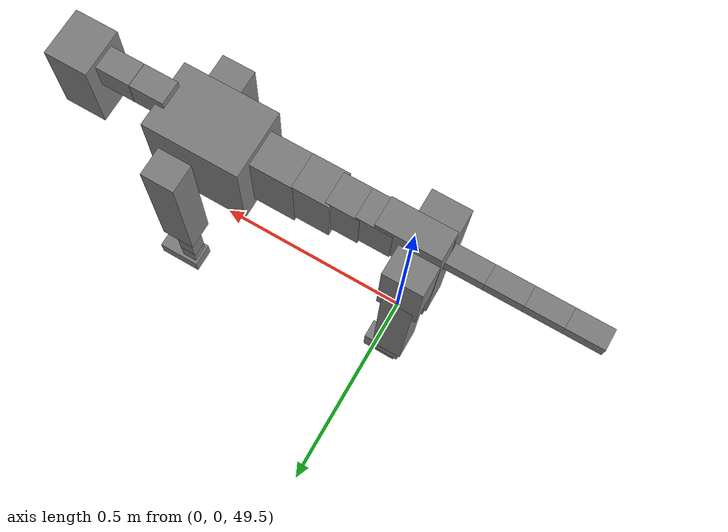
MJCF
<mujoco model="dog">

    <default>
        <joint armature="0.02" stiffness="1" damping="0.2" limited="true"/>
        <geom condim="3" friction="1 0.05 0.05" margin="0.01"/>
        <motor ctrllimited="true" ctrlrange="-1.0 1.0" forcelimited="true" gear="50"/>
    </default>

    <compiler inertiafromgeom="true" angle="radian"/>

    <option timestep="0.016" iterations="50" tolerance="1e-10" solver="Newton" jacobian="dense" cone="pyramidal"/>

    <size nconmax="20000" njmax="60000" nstack="5000000"/>
    <visual>
        <map force="0.1" zfar="30"/>
        <rgba haze="0.15 0.25 0.35 1"/>
        <quality shadowsize="2048"/>
        <global offwidth="800" offheight="800"/>
    </visual>

    <asset>
        <texture type="skybox" builtin="gradient" rgb1="0.3 0.5 0.7" rgb2="0 0 0" width="512" height="512"/>
        <texture name="texplane" type="2d" builtin="checker" rgb1=".2 .3 .4" rgb2=".1 0.15 0.2" width="512" height="512"
                 mark="cross" markrgb=".8 .8 .8"/>
        <texture name="texgeom" type="cube" builtin="flat" mark="cross" width="127" height="1278" rgb1="0.8 0.6 0.4"
                 rgb2="0.8 0.6 0.4" markrgb="1 1 1" random="0.01"/>

        <material name="matplane" reflectance="0.3" texture="texplane" texrepeat="1 1" texuniform="true"/>
        <material name="matgeom" texture="texgeom" texuniform="true" rgba="0.8 0.6 .4 1"/>
    </asset>

    <worldbody>
        <geom name="floor" pos="0 0 0" size="0 0 .25" type="plane" material="matplane" condim="3"/>

        <light directional="false" diffuse=".2 .2 .2" specular="0 0 0" pos="0 0 5" dir="0 0 -1" castshadow="false"/>
        <light mode="targetbodycom" target="torso" directional="false" diffuse=".8 .8 .8" specular="0.3 0.3 0.3"
               pos="0 0 4.0" dir="0 0 -1"/>

        <body name="root" pos="0 0 50">
            <freejoint name="root_1"/>
            <geom type="box" pos="0 0 -0.02" size="0.0774  0.0358  0.063" density="2030"/>

            <body name="spine1" pos="0.054 0 0">
                <joint name="spine1_y" axis="0 1 0" range="0 0.7" limited="true"/>
                <geom type="box" pos="0.02375 0 -0.03" size="0.04375  0.0375  0.05985" density="2030"/>

                <body name="spine2" pos="0.0612 0 0">
                    <joint name="spine2_y" axis="0 1 0" range="-0.15 0.15" limited="true"/>
                    <geom type="box" pos="0.03555  0  -0.04" size="0.04055  0.039  0.06615" density="2030"/>

                    <body name="spine3" pos="0.0730 0 0">
                        <joint name="spine3_y" axis="0 1 0" range="-0.15 0.15" limited="true"/>
                        <geom type="box" pos="0.03555  0  -0.057" size="0.04555  0.0445  0.081" density="2030"/>

                        <body name="spine4" pos="0.0780 0 0">
                            <joint name="spine4_y" axis="0 1 0" range="-0.15 0.15" limited="true"/>
                            <geom type="box" pos="0.05265  0  -0.07" size="0.05265  0.045  0.09135" density="2030"/>

                            <body name="torso" pos="0.1082 0 0">
                                <joint name="torso_y" axis="0 1 0" range="-0.15 0.15" limited="true"/>
                                <geom type="box" pos="0.11925  0  -0.085" size="0.11925  0.085  0.11745"
                                      density="2030"/>

                                <body name="neck1" pos="0.2160  0   0.0180">
                                    <joint name="neck1_y" axis="0 1 0" range="-1.2  -1" limited="true"/>
                                    <geom type="box" pos="0.0423  0  0" size="0.0423  0.03  0.036" density="2325"/>

                                    <body name="neck2" pos="0.0853  0  0">
                                        <joint name="neck2_y" axis="0 1 0" range="0.1  0" limited="true"/>
                                        <geom type="box" pos="0.0423  0  0" size="0.0423  0.03  0.036" density="2325"/>

                                        <body name="head" pos="0.0853  0  0">
                                            <joint name="head_y" axis="0 1 0" range="-0.3  -0.2" limited="true"/>
                                            <geom type="box" pos="0.0531  0  -0.055" size="0.0531  0.06  0.1044"
                                                  density="4030"/>

                                        </body>
                                    </body>
                                </body>

                                <body name="front_shoulder" pos="0.156  0   -0.0480">
                                    <joint name="front_shoulder_y" axis="0 1 0" range="-1 1.5" limited="true"/>
                                    <geom type="box" pos="0 0.13 -0.1468" size="0.0418  0.0357  0.1735" density="1158"/>
                                    <geom type="box" pos="0 -0.13 -0.1468" size="0.0418  0.0357  0.1735"
                                          density="1158"/>

                                    <body name="front_elbow" pos="0  0  -0.2936">
                                        <joint name="front_elbow_y" axis="0 1 0" range="-2 0" limited="true"/>
                                        <geom type="box" pos="0 0.13 -0.0793" size="0.0204  0.0209  0.0793"
                                              density="1081"/>
                                        <geom type="box" pos="0 -0.13 -0.0793" size="0.0204  0.0209  0.0793"
                                              density="1081"/>

                                        <body name="front_wrist" pos="0  0  -0.1585">
                                            <joint name="front_wrist_y" axis="0 1 0" range="-0.2 0" limited="true"/>
                                            <geom type="box" pos="0 0.13 -0.0265" size="0.0190  0.0211  0.0396"
                                                  density="1664"/>
                                            <geom type="box" pos="0 -0.13 -0.0265" size="0.0190  0.0211  0.0396"
                                                  density="1664"/>

                                            <body name="front_finger_end" pos="0  0  -0.0529">
                                                <joint name="front_finger_y" axis="0 1 0" range="-0.4 1"
                                                       limited="true"/>
                                                <geom type="box" pos="0.0295  0.13  -0.0080"
                                                      size="0.0540  0.0295  0.0230" density="1515"/>
                                                <geom type="box" pos="0.0295  -0.13  -0.0080"
                                                      size="0.0540  0.0295  0.0230" density="1515"/>

                                            </body>

                                        </body>
                                    </body>
                                </body>

                            </body>
                        </body>
                    </body>
                </body>
            </body>

            <body name="back_hip" pos="-0.03 0 -0.018">
                <joint name="back_hip_y" axis="0 1 0" range="-1.5 0.3" limited="true"/>
                <geom type="box" pos="0 0.07 -0.0736" size="0.0487  0.0382  0.0964" density="1154"/>
                <geom type="box" pos="0 -0.07 -0.0736" size="0.0487  0.0382  0.0964" density="1154"/>

                <body name="back_knee" pos="0  0  -0.1472">
                    <joint name="back_knee_y" axis="0 1 0" range="0 2.8" limited="true"/>
                    <geom type="box" pos="0 0.07 -0.1791" size="0.0389  0.0384  0.1946" density="1227"/>
                    <geom type="box" pos="0 -0.07 -0.1791" size="0.0389  0.0384  0.1946" density="1227"/>

                    <body name="back_ankle" pos="0  0  -0.3581">
                        <joint name="back_ankle_y" axis="0 1 0" range="-2.2 0" limited="true"/>
                        <geom type="box" pos="0 0.07 -0.0349" size="0.0314  0.0314  0.0462" density="1284"/>
                        <geom type="box" pos="0 -0.07 -0.0349" size="0.0314  0.0314  0.0462" density="1284"/>

                        <body name="back_toe_end" pos="0  0  -0.0699">
                            <joint name="back_toe_y" axis="0 1 0" range="-0.4 1" limited="true"/>
                            <geom type="box" pos="0.0240  0.07  -0.0217" size="0.0440  0.0240  0.0367" density="1515"/>
                            <geom type="box" pos="0.0240  -0.07  -0.0217" size="0.0440  0.0240  0.0367" density="1515"/>

                        </body>
                    </body>
                </body>
            </body>

            <body name="tail1" pos="-0.074 0 -0.006">
                <joint name="tail1_y" axis="0 1 0" range="-0.2 0.2" limited="true"/>
                <geom type="box" pos="-0.0536  0  0" size="0.045  0.025  0.0175" density="1587"/>

                <body name="tail2" pos="-0.09 0 0">
                    <joint name="tail2_y" axis="0 1 0" range="-0.2 0.2" limited="true"/>
                    <geom type="box" pos="-0.0536  0  0" size="0.045  0.025  0.0175" density="1587"/>

                    <body name="tail3" pos="-0.09 0 0">
                        <joint name="tail3_y" axis="0 1 0" range="-0.2 0.2" limited="true"/>
                        <geom type="box" pos="-0.0536  0  0" size="0.045  0.025  0.0175" density="1587"/>

                        <body name="tail4" pos="-0.09 0 0">
                            <joint name="tail4_y" axis="0 1 0" range="-0.2 0.2" limited="true"/>
                            <geom type="box" pos="-0.0536  0  0" size="0.045  0.025  0.0175" density="1587"/>

                        </body>
                    </body>
                </body>
            </body>
        </body>
    </worldbody>

    <actuator>
        <motor joint="spine1_y" forcerange="-150 150     "/>
        <motor joint="spine2_y" forcerange="-150 150     "/>
        <motor joint="spine3_y" forcerange="-150 150     "/>
        <motor joint="spine4_y" forcerange="-150 150     "/>
        <motor joint="torso_y" forcerange="-150 150     "/>
        <motor joint="neck1_y" forcerange="-100 100       "/>
        <motor joint="neck2_y" forcerange="-100 100       "/>
        <motor joint="head_y" forcerange="-150 150       "/>
        <motor joint="front_shoulder_y" forcerange="-189.97 148.14"/>
        <motor joint="front_elbow_y" forcerange="-143.69 108.28"/>
        <motor joint="front_wrist_y" forcerange="-114.58 54.54"/>
        <motor joint="front_finger_y" forcerange="-26.89 90.24"/>
        <motor joint="back_hip_y" forcerange="-362.72 346.50"/>
        <motor joint="back_knee_y" forcerange="-382.81 375.59"/>
        <motor joint="back_angle_y" forcerange="-188.28 214.51"/>
        <motor joint="back_toe_y" forcerange="-41.38 70.47"/>
        <motor joint="tail1_y" forcerange="-50 50     "/>
        <motor joint="tail2_y" forcerange="-50 50     "/>
        <motor joint="tail3_y" forcerange="-50 50     "/>
        <motor joint="tail4_y" forcerange="-50 50     "/>
    </actuator>
</mujoco>
